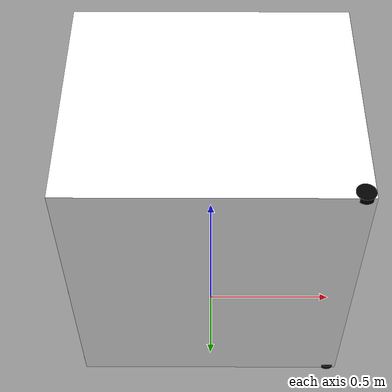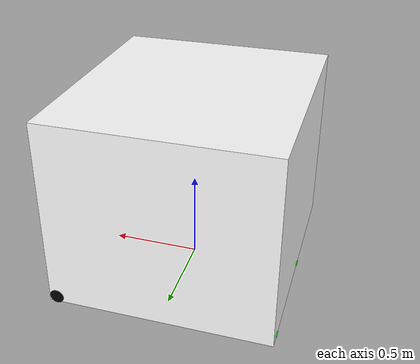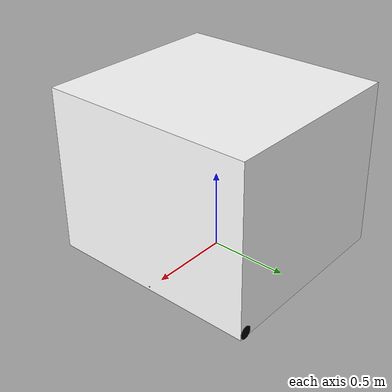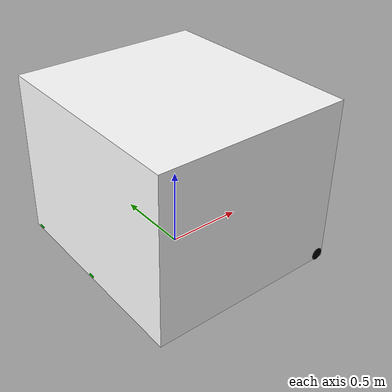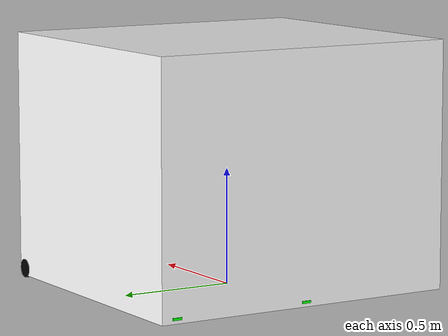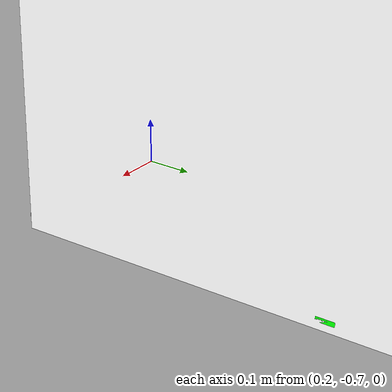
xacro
<?xml version="1.0"?>
<robot xmlns:xacro="http://www.ros.org/wiki/xacro" name="Minus">

    <!-- Constants -->
    <!-- All physical properties use the metric system -->
    <xacro:property name="PI" value="3.1415926535897931" />

    <!-- Base -->
    <xacro:property name="base_size_width" value="1.359" />
    <xacro:property name="base_size_length" value="1.23" />
    <xacro:property name="base_size_height" value="1.06" />
    <xacro:property name="base_ground_offset" value="0.01" />

    <xacro:property name="base_mass" value="1" />

    <!-- Top -->
    <xacro:property name="top_size_height" value="0.2" />
    <xacro:property name="top_mass" value="2" />

    <!-- Wheels -->
    <xacro:property name="wheel_radius" value="0.04" />
    <xacro:property name="wheel_width" value="0.025" />
    <xacro:property name="wheel_mass" value="0.086" />

    <!-- Motors -->
    <!-- Polulu motor:  https://www.pololu.com/product/2824/specs -->
    <!-- Max torque: 170 oz·in = 1.2 Nm -->
    <xacro:property name="motor_max_torque" value="3.4" />
    <!-- Max velocity: 200 rpm = 20 rad/s -->
	<!-- demande a saikou -->
    <xacro:property name="motor_max_velocity" value="886" />

    <!-- Macros for inertia -->
    <xacro:macro name="default_inertial" params="mass">
        <inertial>
            <mass value="${mass}" />
            <inertia ixx="1.0" ixy="0.0" ixz="0.0"
                     iyy="1.0" iyz="0.0"
                     izz="1.0" />
        </inertial>
    </xacro:macro>

    <xacro:macro name="box_inertial" params="mass x y z">
        <inertial>
            <mass value="${mass}" />
            <inertia ixx="${1/12 * mass * (z**2 + y**2)}" ixy="0.0" ixz="0.0"
                     iyy="${1/12 * mass * (x**2 + y**2)}" iyz="0.0"
                     izz="${1/12 * mass * (x**2 + z**2)}" />
        </inertial>
    </xacro:macro>

    <xacro:macro name="cylinder_inertial" params="mass r z">
        <inertial>
            <mass value="${mass}" />
            <inertia ixx="${1/12 * mass * (3 * r**2 + z**2)}" ixy="0.0" ixz="0.0"
                     iyy="${1/12 * mass * (3 * r**2 + z**2)}" iyz="0.0"
                     izz="${1/2 * mass * r**2}" />
        </inertial>
    </xacro:macro>

    <!-- Links -->

    <link name="base_link">
        <visual>
            <geometry>
                <box size="${base_size_length} ${base_size_width - 0.002} ${base_size_height}"/>
            </geometry>
            <origin rpy="0 0 0" xyz="0 0 ${base_size_height/2 + base_ground_offset}"/>
            <material name="white">
                <color rgba="1 1 1 1"/>
            </material>
        </visual>

        <collision>
            <geometry>
                <box size="${base_size_length} ${base_size_width - 0.002} ${base_size_height}"/>
            </geometry>
        </collision>

        <xacro:box_inertial mass="${base_mass}" x="${base_size_length}" y="${base_size_width}" z="${base_size_height}"/>
    </link>

    <xacro:macro name="wheel" params="suffix offset_x offset_y">
        <link name="wheel_${suffix}">
            <visual>
                <geometry>
                    <cylinder length="${wheel_width}" radius="${wheel_radius}"/>
                </geometry>
                <origin rpy="${PI/2} 0 0" /> <!-- xyz="${offset_x} ${offset_y} ${wheel_radius}" -->
                <material name="black">
                    <color rgba="0 0 0 1"/>
                </material>
            </visual>

            <xacro:cylinder_inertial mass="${wheel_mass}" r="${wheel_radius}" z="${wheel_width}"/>
        </link>

        <joint name="base_link_to_wheel_${suffix}" type="fixed">
            <parent link="base_link"/>
            <child link="wheel_${suffix}"/>
            <axis xyz="0 1 0"/>
            <origin xyz="${offset_x} ${offset_y} ${wheel_radius}"/>
            <limit effort ="${motor_max_torque}" velocity="${motor_max_velocity}"/>
        </joint>
    </xacro:macro>

    <xacro:wheel suffix="left" offset_x="${base_size_length/2 - wheel_radius}" offset_y="${-(base_size_width/2 - wheel_width/2)}"/>
    <xacro:wheel suffix="right" offset_x="${base_size_length/2 - wheel_radius}" offset_y="${base_size_width/2 - wheel_width/2}"/>

     <!-- ultrasound -->
    	<xacro:macro name="ultrasound" params="suffix offset_x offset_y offset_z rot_x rot_y rot_z">
        <link name="ultrasound_${suffix}">
            <visual>
                <geometry>
                    <box size="0.02 0.04 0.01" />
                </geometry>
                <origin rpy="0 0 0" xyz="0 0 0" />
                <material name="green">
                    <color rgba="0 1 0 1"/>
                </material>
            </visual>
        </link>

       <joint name="base_link_to_ultrasound_${suffix}" type="fixed">
            <parent link="base_link"/>
            <child link="ultrasound_${suffix}"/>
           <origin rpy="${rot_x} ${rot_y} ${rot_z}" xyz="${offset_x} ${offset_y} ${offset_z}"/>
        </joint>
    </xacro:macro>

    <xacro:ultrasound suffix="BackCenter" offset_x="${-(base_size_length/2 - 0.01/2)}" offset_y="0" offset_z="0.03" rot_x="0" rot_y="0" rot_z="${PI}" />
	<xacro:ultrasound suffix="BackLeft" offset_x="${-(base_size_length/2 - 0.01/2)}" offset_y="${(base_size_length/2 - 0.01/2)}" offset_z="0.03" rot_x="0" rot_y="0" rot_z="${PI}" />
   <xacro:ultrasound suffix="BackRight" offset_x="${-(base_size_length/2 - 0.04/2)}" offset_y="${-(base_size_length/2 - 0.01/2)}" offset_z="0.03" rot_x="0.05" rot_y="0" rot_z="${PI}" />

    <xacro:ultrasound suffix="FrontCenter" offset_x="${base_size_length/2 - 0.02/2}" offset_y="0" offset_z="0.03" rot_x="0" rot_y="0" rot_z="0" />
    <xacro:ultrasound suffix="FrontRight" offset_x="0.5" offset_y="${(base_size_width/2 - 0.5/2)}" offset_z="0.03" rot_x="0" rot_y="0" rot_z="${-PI/2}" />
    <xacro:ultrasound suffix="FrontLeft" offset_x="0.5" offset_y="${-(base_size_width/2 - 0.5/2)}" offset_z="0.03" rot_x="0" rot_y="0" rot_z="${-PI/2}" />

</robot>
